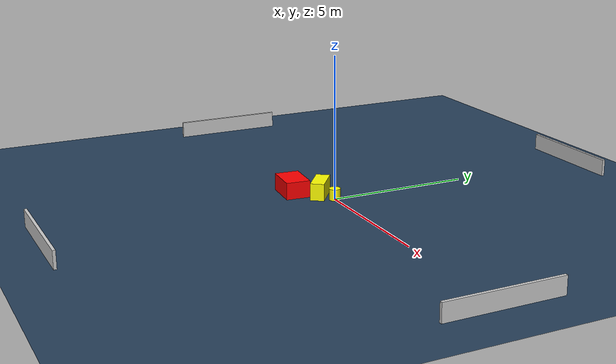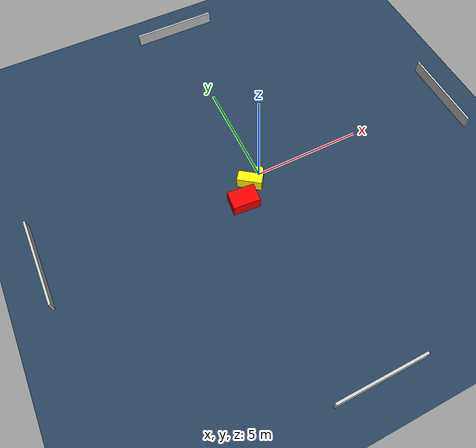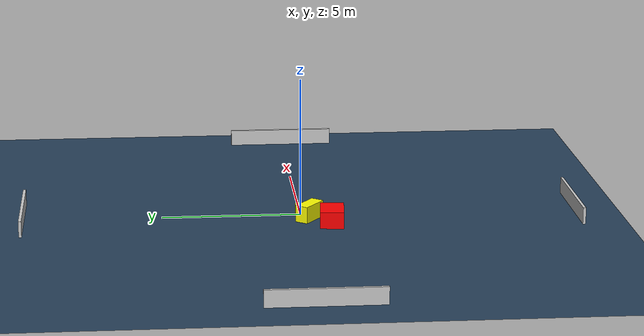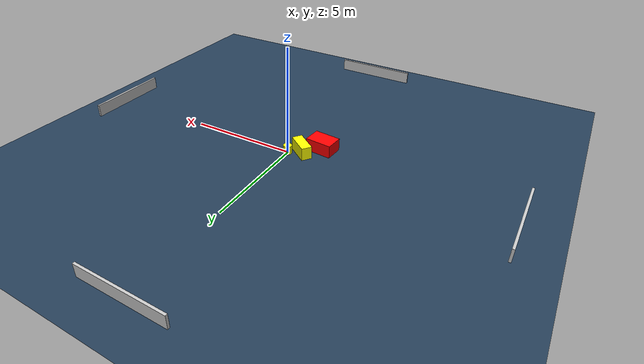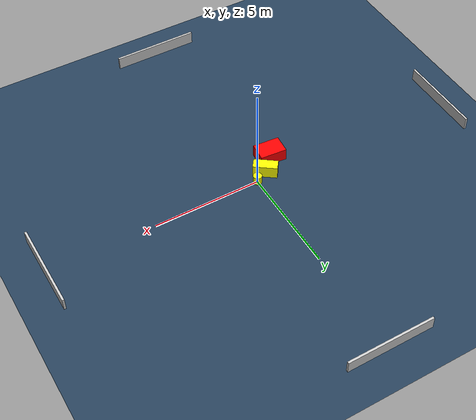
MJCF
<?xml version="1.0" ?>
<mujoco model="generated_environment">
  <option timestep="0.01" integrator="RK4" cone="elliptic"/>
  <default>
    <geom density="1"/>
  </default>
  <asset>
    <texture builtin="gradient" height="3072" name="skybox" rgb1="0.3 0.5 0.7" rgb2="0 0 0" type="skybox" width="512"/>
    <texture builtin="checker" height="300" name="groundplane" rgb1="0.2 0.3 0.4" rgb2="0.1 0.2 0.3" type="2d" width="300"/>
    <material name="groundplane" reflectance="0.2" texrepeat="5 5" texture="groundplane"/>
  </asset>
  <worldbody>
    <light dir="0 0 -1" directional="true" pos="0 0 1.5"/>
    <geom condim="3" friction="0.5 0.005 0.001" material="groundplane" name="floor" pos="0 0 0" size="0 0 0.05" type="plane"/>
    <body name="walls">
      <geom name="wall_1" condim="4" pos="-10.0 0.0 0.3" rgba="0.800000011920929 0.800000011920929 0.800000011920929 1.0" size="0.05 2.0 0.3" type="box"/>
      <geom name="wall_2" condim="4" pos="10.0 0.0 0.3" rgba="0.800000011920929 0.800000011920929 0.800000011920929 1.0" size="0.05 2.0 0.3" type="box"/>
      <geom name="wall_3" condim="4" pos="0.0 -10.0 0.3" rgba="0.800000011920929 0.800000011920929 0.800000011920929 1.0" size="2.0 0.05 0.3" type="box"/>
      <geom name="wall_4" condim="4" pos="0.0 10.0 0.3" rgba="0.800000011920929 0.800000011920929 0.800000011920929 1.0" size="2.0 0.05 0.3" type="box"/>
    </body>
    <body name="robot">
      <joint name="joint_x" type="slide" pos="0 0 0" axis="1 0 0"/>
      <joint name="joint_y" type="slide" pos="0 0 0" axis="0 1 0"/>
      <geom name="robot" type="cylinder" pos="0.0 0.0 0.2" size="0.2 0.2 0.0" mass="5.0" friction="1.0 0.005 0.0001" condim="4" rgba="1.0 1.0 0.0 1.0"/>
    </body>
    <body name="obstacle_1_movable">
      <geom name="obstacle_1_movable" condim="4" pos="-0.5707534626746023 -0.2766413932379878 0.3" euler="0 0 53.39962396711417" friction="0.0 0.005 0.001" rgba="1.0 1.0 0.0 1.0" size="0.24225951924743022 0.55224247399814 0.3" type="box" mass="0.1"/>
      <joint type="free"/>
    </body>
    <body name="obstacle_2_static">
      <geom name="obstacle_2_static" condim="4" pos="-1.240551861656615 -1.0267559377287219 0.3" euler="0 0 265.1311575077173" friction="0.0 0.005 0.001" rgba="1.0 0.0 0.0 1.0" size="0.42540007814972136 0.6132963516839904 0.3" type="box"/>
    </body>
  </worldbody>
  <actuator>
    <motor name="actuator_x" joint="joint_x" gear="1" ctrlrange="-1 1"/>
    <motor name="actuator_y" joint="joint_y" gear="1" ctrlrange="-1 1"/>
  </actuator>
</mujoco>
